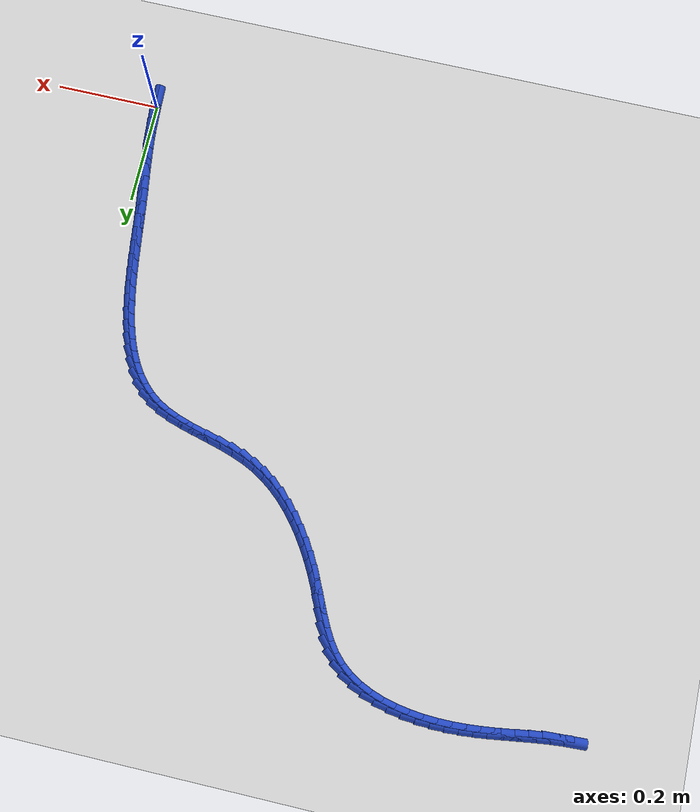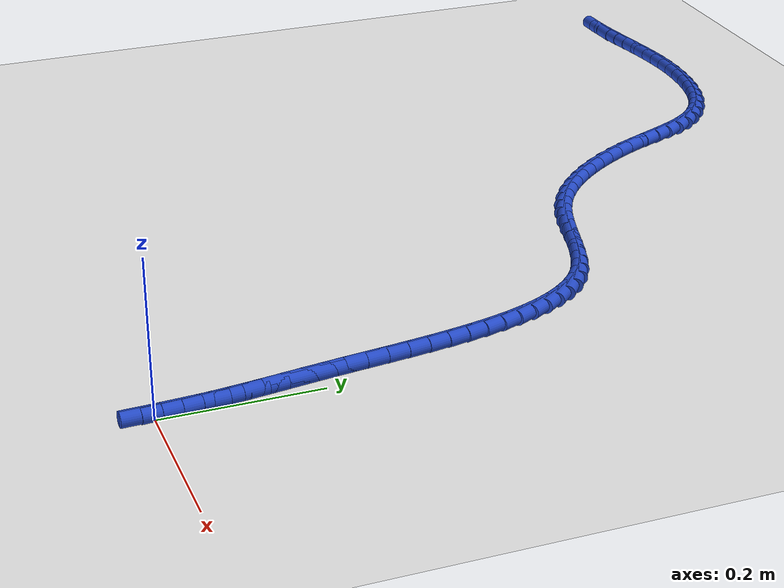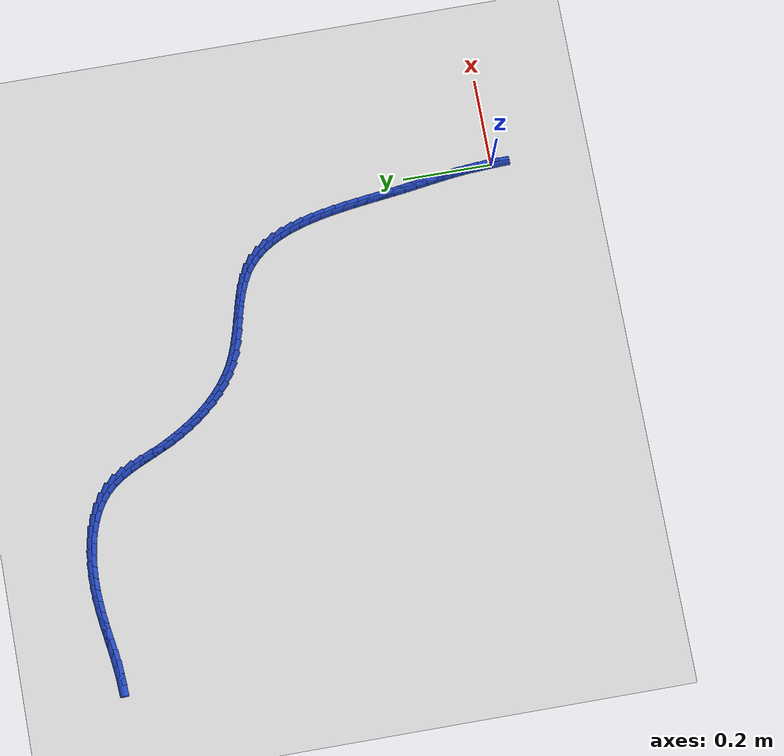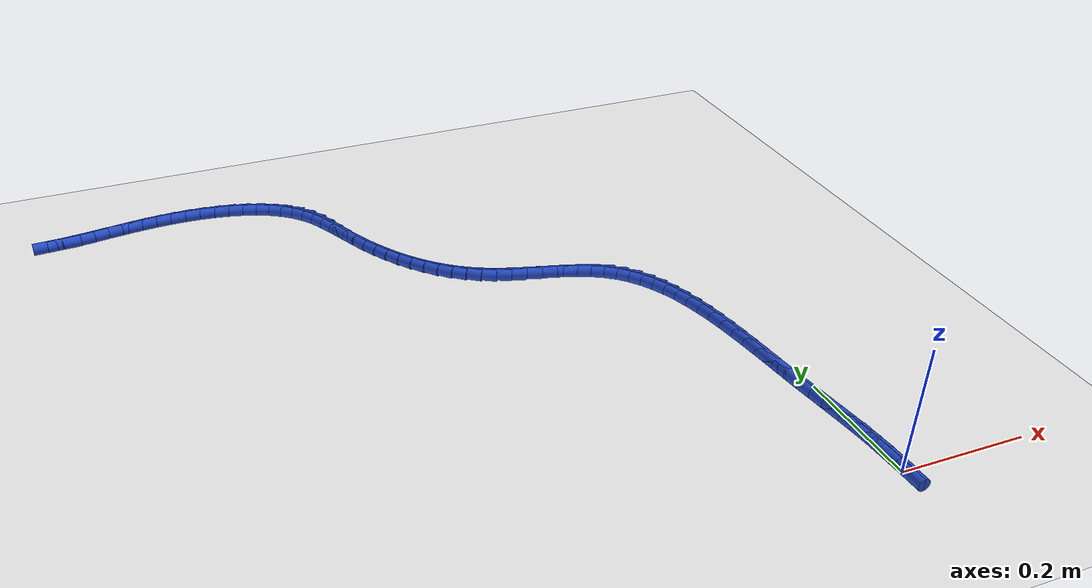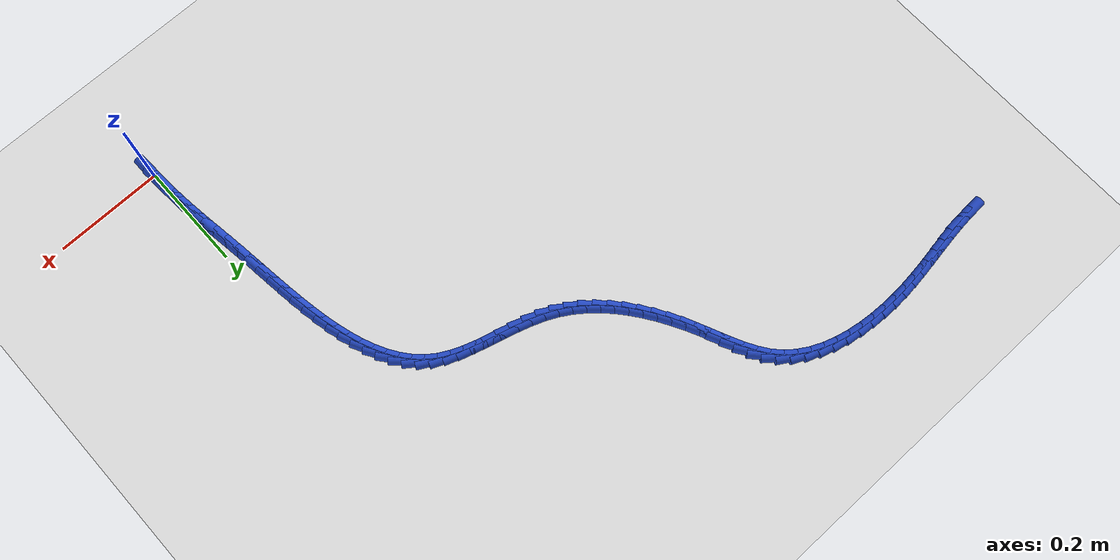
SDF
<sdf version="1.6">
 <world name="default">
  <model name="ground_plane">
   <static>1</static>
   <link name="link">
    <collision name="collision">
     <geometry><plane><normal>0 0 1</normal><size>100 100</size></plane></geometry>
     <surface><friction><ode><mu>100</mu><mu2>50</mu2></ode></friction></surface>
    </collision>
    <visual name="visual">
     <cast_shadows>0</cast_shadows>
     <geometry><plane><normal>0 0 1</normal><size>100 100</size></plane></geometry>
     <material>
      <script><uri>file://media/materials/scripts/gazebo.material</uri><name>Gazebo/WhiteGlow</name></script>
     </material>
    </visual>
   </link>
  </model>
  <model name="line">
   <link name="link_0">
    <pose>-1.0408340855860843e-17 4.163336342344337e-17 0.01 0 1.57 -1.5335265531887328</pose>
    <collision name="collision">
     <geometry><cylinder><radius>0.01</radius><length>0.08</length></cylinder></geometry>
    </collision>
    <visual name="visual">
     <material>
      <script><name>Gazebo/Blue</name><uri>file://media/materials/scripts/gazebo.material</uri></script>
     </material>
     <geometry><cylinder><radius>0.01</radius><length>0.08</length></cylinder></geometry>
    </visual>
   </link>
   <link name="link_1">
    <pose>-0.0008815606381045438 0.023642548421452525 0.01 0 1.57 -1.5033334476186593</pose>
    <collision name="collision">
     <geometry><cylinder><radius>0.01</radius><length>0.08</length></cylinder></geometry>
    </collision>
    <visual name="visual">
     <material>
      <script><name>Gazebo/Blue</name><uri>file://media/materials/scripts/gazebo.material</uri></script>
     </material>
     <geometry><cylinder><radius>0.01</radius><length>0.08</length></cylinder></geometry>
    </visual>
   </link>
   <link name="link_2">
    <pose>-0.002472213597452904 0.047184963130246164 0.01 0 1.57 -1.4779685904669417</pose>
    <collision name="collision">
     <geometry><cylinder><radius>0.01</radius><length>0.08</length></cylinder></geometry>
    </collision>
    <visual name="visual">
     <material>
      <script><name>Gazebo/Blue</name><uri>file://media/materials/scripts/gazebo.material</uri></script>
     </material>
     <geometry><cylinder><radius>0.01</radius><length>0.08</length></cylinder></geometry>
    </visual>
   </link>
   <link name="link_3">
    <pose>-0.004663008302395894 0.07071778305130683 0.01 0 1.57 -1.4577037268923556</pose>
    <collision name="collision">
     <geometry><cylinder><radius>0.01</radius><length>0.08</length></cylinder></geometry>
    </collision>
    <visual name="visual">
     <material>
      <script><name>Gazebo/Blue</name><uri>file://media/materials/scripts/gazebo.material</uri></script>
     </material>
     <geometry><cylinder><radius>0.01</radius><length>0.08</length></cylinder></geometry>
    </visual>
   </link>
   <link name="link_4">
    <pose>-0.007344994177284325 0.0943315471095603 0.01 0 1.57 -1.4426731631718936</pose>
    <collision name="collision">
     <geometry><cylinder><radius>0.01</radius><length>0.08</length></cylinder></geometry>
    </collision>
    <visual name="visual">
     <material>
      <script><name>Gazebo/Blue</name><uri>file://media/materials/scripts/gazebo.material</uri></script>
     </material>
     <geometry><cylinder><radius>0.01</radius><length>0.08</length></cylinder></geometry>
    </visual>
   </link>
   <link name="link_5">
    <pose>-0.010409220646469007 0.11811679422993246 0.01 0 1.57 -1.4328874847076394</pose>
    <collision name="collision">
     <geometry><cylinder><radius>0.01</radius><length>0.08</length></cylinder></geometry>
    </collision>
    <visual name="visual">
     <material>
      <script><name>Gazebo/Blue</name><uri>file://media/materials/scripts/gazebo.material</uri></script>
     </material>
     <geometry><cylinder><radius>0.01</radius><length>0.08</length></cylinder></geometry>
    </visual>
   </link>
   <link name="link_6">
    <pose>-0.013746737134300753 0.14216406333734918 0.01 0 1.57 -1.4282500407042749</pose>
    <collision name="collision">
     <geometry><cylinder><radius>0.01</radius><length>0.08</length></cylinder></geometry>
    </collision>
    <visual name="visual">
     <material>
      <script><name>Gazebo/Blue</name><uri>file://media/materials/scripts/gazebo.material</uri></script>
     </material>
     <geometry><cylinder><radius>0.01</radius><length>0.08</length></cylinder></geometry>
    </visual>
   </link>
   <link name="link_7">
    <pose>-0.017248593065130366 0.16656389335673624 0.01 0 1.57 -1.4285736525562691</pose>
    <collision name="collision">
     <geometry><cylinder><radius>0.01</radius><length>0.08</length></cylinder></geometry>
    </collision>
    <visual name="visual">
     <material>
      <script><name>Gazebo/Blue</name><uri>file://media/materials/scripts/gazebo.material</uri></script>
     </material>
     <geometry><cylinder><radius>0.01</radius><length>0.08</length></cylinder></geometry>
    </visual>
   </link>
   <link name="link_8">
    <pose>-0.02080583786330866 0.19140682321301955 0.01 0 1.57 -1.4335960940614685</pose>
    <collision name="collision">
     <geometry><cylinder><radius>0.01</radius><length>0.08</length></cylinder></geometry>
    </collision>
    <visual name="visual">
     <material>
      <script><name>Gazebo/Blue</name><uri>file://media/materials/scripts/gazebo.material</uri></script>
     </material>
     <geometry><cylinder><radius>0.01</radius><length>0.08</length></cylinder></geometry>
    </visual>
   </link>
   <link name="link_9">
    <pose>-0.024309520953186434 0.21678339183112483 0.01 0 1.57 -1.4421229647635574</pose>
    <collision name="collision">
     <geometry><cylinder><radius>0.01</radius><length>0.08</length></cylinder></geometry>
    </collision>
    <visual name="visual">
     <material>
      <script><name>Gazebo/Blue</name><uri>file://media/materials/scripts/gazebo.material</uri></script>
     </material>
     <geometry><cylinder><radius>0.01</radius><length>0.08</length></cylinder></geometry>
    </visual>
   </link>
   <link name="link_10">
    <pose>-0.027670828312121688 0.24276185332578593 0.01 0 1.57 -1.447130718149854</pose>
    <collision name="collision">
     <geometry><cylinder><radius>0.01</radius><length>0.08</length></cylinder></geometry>
    </collision>
    <visual name="visual">
     <material>
      <script><name>Gazebo/Blue</name><uri>file://media/materials/scripts/gazebo.material</uri></script>
     </material>
     <geometry><cylinder><radius>0.01</radius><length>0.08</length></cylinder></geometry>
    </visual>
   </link>
   <link name="link_11">
    <pose>-0.030961202705803523 0.26923310811526735 0.01 0 1.57 -1.4456629101350595</pose>
    <collision name="collision">
     <geometry><cylinder><radius>0.01</radius><length>0.08</length></cylinder></geometry>
    </collision>
    <visual name="visual">
     <material>
      <script><name>Gazebo/Blue</name><uri>file://media/materials/scripts/gazebo.material</uri></script>
     </material>
     <geometry><cylinder><radius>0.01</radius><length>0.08</length></cylinder></geometry>
    </visual>
   </link>
   <link name="link_12">
    <pose>-0.03432864654540235 0.2960033292482925 0.01 0 1.57 -1.4378909385127752</pose>
    <collision name="collision">
     <geometry><cylinder><radius>0.01</radius><length>0.08</length></cylinder></geometry>
    </collision>
    <visual name="visual">
     <material>
      <script><name>Gazebo/Blue</name><uri>file://media/materials/scripts/gazebo.material</uri></script>
     </material>
     <geometry><cylinder><radius>0.01</radius><length>0.08</length></cylinder></geometry>
    </visual>
   </link>
   <link name="link_13">
    <pose>-0.037921637205859636 0.3228781641385625 0.01 0 1.57 -1.4237598934275926</pose>
    <collision name="collision">
     <geometry><cylinder><radius>0.01</radius><length>0.08</length></cylinder></geometry>
    </collision>
    <visual name="visual">
     <material>
      <script><name>Gazebo/Blue</name><uri>file://media/materials/scripts/gazebo.material</uri></script>
     </material>
     <geometry><cylinder><radius>0.01</radius><length>0.08</length></cylinder></geometry>
    </visual>
   </link>
   <link name="link_14">
    <pose>-0.04188865206211683 0.3496632601997785 0.01 0 1.57 -1.4029803419390274</pose>
    <collision name="collision">
     <geometry><cylinder><radius>0.01</radius><length>0.08</length></cylinder></geometry>
    </collision>
    <visual name="visual">
     <material>
      <script><name>Gazebo/Blue</name><uri>file://media/materials/scripts/gazebo.material</uri></script>
     </material>
     <geometry><cylinder><radius>0.01</radius><length>0.08</length></cylinder></geometry>
    </visual>
   </link>
   <link name="link_15">
    <pose>-0.04637816848911541 0.3761642648456414 0.01 0 1.57 -1.3750277220714602</pose>
    <collision name="collision">
     <geometry><cylinder><radius>0.01</radius><length>0.08</length></cylinder></geometry>
    </collision>
    <visual name="visual">
     <material>
      <script><name>Gazebo/Blue</name><uri>file://media/materials/scripts/gazebo.material</uri></script>
     </material>
     <geometry><cylinder><radius>0.01</radius><length>0.08</length></cylinder></geometry>
    </visual>
   </link>
   <link name="link_16">
    <pose>-0.05153866386179685 0.40218682548985274 0.01 0 1.57 -1.3391337930501368</pose>
    <collision name="collision">
     <geometry><cylinder><radius>0.01</radius><length>0.08</length></cylinder></geometry>
    </collision>
    <visual name="visual">
     <material>
      <script><name>Gazebo/Blue</name><uri>file://media/materials/scripts/gazebo.material</uri></script>
     </material>
     <geometry><cylinder><radius>0.01</radius><length>0.08</length></cylinder></geometry>
    </visual>
   </link>
   <link name="link_17">
    <pose>-0.05751861555510259 0.42753658954611323 0.01 0 1.57 -1.2942779838909912</pose>
    <collision name="collision">
     <geometry><cylinder><radius>0.01</radius><length>0.08</length></cylinder></geometry>
    </collision>
    <visual name="visual">
     <material>
      <script><name>Gazebo/Blue</name><uri>file://media/materials/scripts/gazebo.material</uri></script>
     </material>
     <geometry><cylinder><radius>0.01</radius><length>0.08</length></cylinder></geometry>
    </visual>
   </link>
   <link name="link_18">
    <pose>-0.0644665009439741 0.45201920442812416 0.01 0 1.57 -1.239192911731538</pose>
    <collision name="collision">
     <geometry><cylinder><radius>0.01</radius><length>0.08</length></cylinder></geometry>
    </collision>
    <visual name="visual">
     <material>
      <script><name>Gazebo/Blue</name><uri>file://media/materials/scripts/gazebo.material</uri></script>
     </material>
     <geometry><cylinder><radius>0.01</radius><length>0.08</length></cylinder></geometry>
    </visual>
   </link>
   <link name="link_19">
    <pose>-0.07253079740335286 0.47544031754958666 0.01 0 1.57 -1.1724101470219883</pose>
    <collision name="collision">
     <geometry><cylinder><radius>0.01</radius><length>0.08</length></cylinder></geometry>
    </collision>
    <visual name="visual">
     <material>
      <script><name>Gazebo/Blue</name><uri>file://media/materials/scripts/gazebo.material</uri></script>
     </material>
     <geometry><cylinder><radius>0.01</radius><length>0.08</length></cylinder></geometry>
    </visual>
   </link>
   <link name="link_20">
    <pose>-0.08185998230818031 0.49760557632420155 0.01 0 1.57 -1.0923901492039259</pose>
    <collision name="collision">
     <geometry><cylinder><radius>0.01</radius><length>0.08</length></cylinder></geometry>
    </collision>
    <visual name="visual">
     <material>
      <script><name>Gazebo/Blue</name><uri>file://media/materials/scripts/gazebo.material</uri></script>
     </material>
     <geometry><cylinder><radius>0.01</radius><length>0.08</length></cylinder></geometry>
    </visual>
   </link>
   <link name="link_21">
    <pose>-0.09260253303339797 0.5183206281656704 0.01 0 1.57 -0.9977986946641823</pose>
    <collision name="collision">
     <geometry><cylinder><radius>0.01</radius><length>0.08</length></cylinder></geometry>
    </collision>
    <visual name="visual">
     <material>
      <script><name>Gazebo/Blue</name><uri>file://media/materials/scripts/gazebo.material</uri></script>
     </material>
     <geometry><cylinder><radius>0.01</radius><length>0.08</length></cylinder></geometry>
    </visual>
   </link>
   <link name="link_22">
    <pose>-0.10490692695394727 0.5373911204876941 0.01 0 1.57 -0.8879886369406136</pose>
    <collision name="collision">
     <geometry><cylinder><radius>0.01</radius><length>0.08</length></cylinder></geometry>
    </collision>
    <visual name="visual">
     <material>
      <script><name>Gazebo/Blue</name><uri>file://media/materials/scripts/gazebo.material</uri></script>
     </material>
     <geometry><cylinder><radius>0.01</radius><length>0.08</length></cylinder></geometry>
    </visual>
   </link>
   <link name="link_23">
    <pose>-0.11892164144476966 0.5546227007039738 0.01 0 1.57 -0.7636713867671715</pose>
    <collision name="collision">
     <geometry><cylinder><radius>0.01</radius><length>0.08</length></cylinder></geometry>
    </collision>
    <visual name="visual">
     <material>
      <script><name>Gazebo/Blue</name><uri>file://media/materials/scripts/gazebo.material</uri></script>
     </material>
     <geometry><cylinder><radius>0.01</radius><length>0.08</length></cylinder></geometry>
    </visual>
   </link>
   <link name="link_24">
    <pose>-0.1347951538808066 0.5698210162282105 0.01 0 1.57 -0.6275834383459182</pose>
    <collision name="collision">
     <geometry><cylinder><radius>0.01</radius><length>0.08</length></cylinder></geometry>
    </collision>
    <visual name="visual">
     <material>
      <script><name>Gazebo/Blue</name><uri>file://media/materials/scripts/gazebo.material</uri></script>
     </material>
     <geometry><cylinder><radius>0.01</radius><length>0.08</length></cylinder></geometry>
    </visual>
   </link>
   <link name="link_25">
    <pose>-0.15267575117991916 0.5827919592301838 0.01 0 1.57 -0.4939381866768642</pose>
    <collision name="collision">
     <geometry><cylinder><radius>0.01</radius><length>0.08</length></cylinder></geometry>
    </collision>
    <visual name="visual">
     <material>
      <script><name>Gazebo/Blue</name><uri>file://media/materials/scripts/gazebo.material</uri></script>
     </material>
     <geometry><cylinder><radius>0.01</radius><length>0.08</length></cylinder></geometry>
    </visual>
   </link>
   <link name="link_26">
    <pose>-0.1725806281138693 0.5935098881794412 0.01 0 1.57 -0.3911125346922422</pose>
    <collision name="collision">
     <geometry><cylinder><radius>0.01</radius><length>0.08</length></cylinder></geometry>
    </collision>
    <visual name="visual">
     <material>
      <script><name>Gazebo/Blue</name><uri>file://media/materials/scripts/gazebo.material</uri></script>
     </material>
     <geometry><cylinder><radius>0.01</radius><length>0.08</length></cylinder></geometry>
    </visual>
   </link>
   <link name="link_27">
    <pose>-0.1941673604443634 0.6024113073395603 0.01 0 1.57 -0.3208952534931505</pose>
    <collision name="collision">
     <geometry><cylinder><radius>0.01</radius><length>0.08</length></cylinder></geometry>
    </collision>
    <visual name="visual">
     <material>
      <script><name>Gazebo/Blue</name><uri>file://media/materials/scripts/gazebo.material</uri></script>
     </material>
     <geometry><cylinder><radius>0.01</radius><length>0.08</length></cylinder></geometry>
    </visual>
   </link>
   <link name="link_28">
    <pose>-0.21703240450827754 0.61001126544571 0.01 0 1.57 -0.2794964845156658</pose>
    <collision name="collision">
     <geometry><cylinder><radius>0.01</radius><length>0.08</length></cylinder></geometry>
    </collision>
    <visual name="visual">
     <material>
      <script><name>Gazebo/Blue</name><uri>file://media/materials/scripts/gazebo.material</uri></script>
     </material>
     <geometry><cylinder><radius>0.01</radius><length>0.08</length></cylinder></geometry>
    </visual>
   </link>
   <link name="link_29">
    <pose>-0.24077221664248757 0.6168248112330594 0.01 0 1.57 -0.26391209824238027</pose>
    <collision name="collision">
     <geometry><cylinder><radius>0.01</radius><length>0.08</length></cylinder></geometry>
    </collision>
    <visual name="visual">
     <material>
      <script><name>Gazebo/Blue</name><uri>file://media/materials/scripts/gazebo.material</uri></script>
     </material>
     <geometry><cylinder><radius>0.01</radius><length>0.08</length></cylinder></geometry>
    </visual>
   </link>
   <link name="link_30">
    <pose>-0.2649832531838695 0.6233669934367777 0.01 0 1.57 -0.27254368932291256</pose>
    <collision name="collision">
     <geometry><cylinder><radius>0.01</radius><length>0.08</length></cylinder></geometry>
    </collision>
    <visual name="visual">
     <material>
      <script><name>Gazebo/Blue</name><uri>file://media/materials/scripts/gazebo.material</uri></script>
     </material>
     <geometry><cylinder><radius>0.01</radius><length>0.08</length></cylinder></geometry>
    </visual>
   </link>
   <link name="link_31">
    <pose>-0.28926197046929925 0.630152860792034 0.01 0 1.57 -0.30525969146622467</pose>
    <collision name="collision">
     <geometry><cylinder><radius>0.01</radius><length>0.08</length></cylinder></geometry>
    </collision>
    <visual name="visual">
     <material>
      <script><name>Gazebo/Blue</name><uri>file://media/materials/scripts/gazebo.material</uri></script>
     </material>
     <geometry><cylinder><radius>0.01</radius><length>0.08</length></cylinder></geometry>
    </visual>
   </link>
   <link name="link_32">
    <pose>-0.3132048248356526 0.6376974620339968 0.01 0 1.57 -0.3631874440926667</pose>
    <collision name="collision">
     <geometry><cylinder><radius>0.01</radius><length>0.08</length></cylinder></geometry>
    </collision>
    <visual name="visual">
     <material>
      <script><name>Gazebo/Blue</name><uri>file://media/materials/scripts/gazebo.material</uri></script>
     </material>
     <geometry><cylinder><radius>0.01</radius><length>0.08</length></cylinder></geometry>
    </visual>
   </link>
   <link name="link_33">
    <pose>-0.3364082726198057 0.6465158458978358 0.01 0 1.57 -0.4474529683519637</pose>
    <collision name="collision">
     <geometry><cylinder><radius>0.01</radius><length>0.08</length></cylinder></geometry>
    </collision>
    <visual name="visual">
     <material>
      <script><name>Gazebo/Blue</name><uri>file://media/materials/scripts/gazebo.material</uri></script>
     </material>
     <geometry><cylinder><radius>0.01</radius><length>0.08</length></cylinder></geometry>
    </visual>
   </link>
   <link name="link_34">
    <pose>-0.35847890117476733 0.6571079280459454 0.01 0 1.57 -0.5431304937333896</pose>
    <collision name="collision">
     <geometry><cylinder><radius>0.01</radius><length>0.08</length></cylinder></geometry>
    </collision>
    <visual name="visual">
     <material>
      <script><name>Gazebo/Blue</name><uri>file://media/materials/scripts/gazebo.material</uri></script>
     </material>
     <geometry><cylinder><radius>0.01</radius><length>0.08</length></cylinder></geometry>
    </visual>
   </link>
   <link name="link_35">
    <pose>-0.37924413398741486 0.6696437530555999 0.01 0 1.57 -0.6336956714926293</pose>
    <collision name="collision">
     <geometry><cylinder><radius>0.01</radius><length>0.08</length></cylinder></geometry>
    </collision>
    <visual name="visual">
     <material>
      <script><name>Gazebo/Blue</name><uri>file://media/materials/scripts/gazebo.material</uri></script>
     </material>
     <geometry><cylinder><radius>0.01</radius><length>0.08</length></cylinder></geometry>
    </visual>
   </link>
   <link name="link_36">
    <pose>-0.3987456701961418 0.6839732940536191 0.01 0 1.57 -0.7175199030941809</pose>
    <collision name="collision">
     <geometry><cylinder><radius>0.01</radius><length>0.08</length></cylinder></geometry>
    </collision>
    <visual name="visual">
     <material>
      <script><name>Gazebo/Blue</name><uri>file://media/materials/scripts/gazebo.material</uri></script>
     </material>
     <geometry><cylinder><radius>0.01</radius><length>0.08</length></cylinder></geometry>
    </visual>
   </link>
   <link name="link_37">
    <pose>-0.41703402748490576 0.699933351579786 0.01 0 1.57 -0.7941288165803341</pose>
    <collision name="collision">
     <geometry><cylinder><radius>0.01</radius><length>0.08</length></cylinder></geometry>
    </collision>
    <visual name="visual">
     <material>
      <script><name>Gazebo/Blue</name><uri>file://media/materials/scripts/gazebo.material</uri></script>
     </material>
     <geometry><cylinder><radius>0.01</radius><length>0.08</length></cylinder></geometry>
    </visual>
   </link>
   <link name="link_38">
    <pose>-0.4341597235376636 0.7173607261738832 0.01 0 1.57 -0.8634644352262602</pose>
    <collision name="collision">
     <geometry><cylinder><radius>0.01</radius><length>0.08</length></cylinder></geometry>
    </collision>
    <visual name="visual">
     <material>
      <script><name>Gazebo/Blue</name><uri>file://media/materials/scripts/gazebo.material</uri></script>
     </material>
     <geometry><cylinder><radius>0.01</radius><length>0.08</length></cylinder></geometry>
    </visual>
   </link>
   <link name="link_39">
    <pose>-0.4501732760383726 0.7360922183756939 0.01 0 1.57 -0.9257633937367337</pose>
    <collision name="collision">
     <geometry><cylinder><radius>0.01</radius><length>0.08</length></cylinder></geometry>
    </collision>
    <visual name="visual">
     <material>
      <script><name>Gazebo/Blue</name><uri>file://media/materials/scripts/gazebo.material</uri></script>
     </material>
     <geometry><cylinder><radius>0.01</radius><length>0.08</length></cylinder></geometry>
    </visual>
   </link>
   <link name="link_40">
    <pose>-0.46512520267099 0.7559646287250008 0.01 0 1.57 -0.9814424630135068</pose>
    <collision name="collision">
     <geometry><cylinder><radius>0.01</radius><length>0.08</length></cylinder></geometry>
    </collision>
    <visual name="visual">
     <material>
      <script><name>Gazebo/Blue</name><uri>file://media/materials/scripts/gazebo.material</uri></script>
     </material>
     <geometry><cylinder><radius>0.01</radius><length>0.08</length></cylinder></geometry>
    </visual>
   </link>
   <link name="link_41">
    <pose>-0.479066021119473 0.7768147577615864 0.01 0 1.57 -1.0310070218489655</pose>
    <collision name="collision">
     <geometry><cylinder><radius>0.01</radius><length>0.08</length></cylinder></geometry>
    </collision>
    <visual name="visual">
     <material>
      <script><name>Gazebo/Blue</name><uri>file://media/materials/scripts/gazebo.material</uri></script>
     </material>
     <geometry><cylinder><radius>0.01</radius><length>0.08</length></cylinder></geometry>
    </visual>
   </link>
   <link name="link_42">
    <pose>-0.4920462490677786 0.7984794060252336 0.01 0 1.57 -1.074985651485482</pose>
    <collision name="collision">
     <geometry><cylinder><radius>0.01</radius><length>0.08</length></cylinder></geometry>
    </collision>
    <visual name="visual">
     <material>
      <script><name>Gazebo/Blue</name><uri>file://media/materials/scripts/gazebo.material</uri></script>
     </material>
     <geometry><cylinder><radius>0.01</radius><length>0.08</length></cylinder></geometry>
    </visual>
   </link>
   <link name="link_43">
    <pose>-0.5041164041998645 0.8207953740557256 0.01 0 1.57 -1.1138864565512858</pose>
    <collision name="collision">
     <geometry><cylinder><radius>0.01</radius><length>0.08</length></cylinder></geometry>
    </collision>
    <visual name="visual">
     <material>
      <script><name>Gazebo/Blue</name><uri>file://media/materials/scripts/gazebo.material</uri></script>
     </material>
     <geometry><cylinder><radius>0.01</radius><length>0.08</length></cylinder></geometry>
    </visual>
   </link>
   <link name="link_44">
    <pose>-0.515327024153798 0.8435994497952456 0.01 0 1.57 -1.1430391814062826</pose>
    <collision name="collision">
     <geometry><cylinder><radius>0.01</radius><length>0.08</length></cylinder></geometry>
    </collision>
    <visual name="visual">
     <material>
      <script><name>Gazebo/Blue</name><uri>file://media/materials/scripts/gazebo.material</uri></script>
     </material>
     <geometry><cylinder><radius>0.01</radius><length>0.08</length></cylinder></geometry>
    </visual>
   </link>
   <link name="link_45">
    <pose>-0.5258397549877789 0.8666582752708383 0.01 0 1.57 -1.1454804708642452</pose>
    <collision name="collision">
     <geometry><cylinder><radius>0.01</radius><length>0.08</length></cylinder></geometry>
    </collision>
    <visual name="visual">
     <material>
      <script><name>Gazebo/Blue</name><uri>file://media/materials/scripts/gazebo.material</uri></script>
     </material>
     <geometry><cylinder><radius>0.01</radius><length>0.08</length></cylinder></geometry>
    </visual>
   </link>
   <link name="link_46">
    <pose>-0.5361879579658857 0.8895038180964252 0.01 0 1.57 -1.1167049565069889</pose>
    <collision name="collision">
     <geometry><cylinder><radius>0.01</radius><length>0.08</length></cylinder></geometry>
    </collision>
    <visual name="visual">
     <material>
      <script><name>Gazebo/Blue</name><uri>file://media/materials/scripts/gazebo.material</uri></script>
     </material>
     <geometry><cylinder><radius>0.01</radius><length>0.08</length></cylinder></geometry>
    </visual>
   </link>
   <link name="link_47">
    <pose>-0.5469826380340865 0.9116190272146653 0.01 0 1.57 -1.0542662585774825</pose>
    <collision name="collision">
     <geometry><cylinder><radius>0.01</radius><length>0.08</length></cylinder></geometry>
    </collision>
    <visual name="visual">
     <material>
      <script><name>Gazebo/Blue</name><uri>file://media/materials/scripts/gazebo.material</uri></script>
     </material>
     <geometry><cylinder><radius>0.01</radius><length>0.08</length></cylinder></geometry>
    </visual>
   </link>
   <link name="link_48">
    <pose>-0.5588348001383497 0.9324868515682173 0.01 0 1.57 -0.9548800586331992</pose>
    <collision name="collision">
     <geometry><cylinder><radius>0.01</radius><length>0.08</length></cylinder></geometry>
    </collision>
    <visual name="visual">
     <material>
      <script><name>Gazebo/Blue</name><uri>file://media/materials/scripts/gazebo.material</uri></script>
     </material>
     <geometry><cylinder><radius>0.01</radius><length>0.08</length></cylinder></geometry>
    </visual>
   </link>
   <link name="link_49">
    <pose>-0.5723554492246438 0.9515902400997405 0.01 0 1.57 -0.8179550583791481</pose>
    <collision name="collision">
     <geometry><cylinder><radius>0.01</radius><length>0.08</length></cylinder></geometry>
    </collision>
    <visual name="visual">
     <material>
      <script><name>Gazebo/Blue</name><uri>file://media/materials/scripts/gazebo.material</uri></script>
     </material>
     <geometry><cylinder><radius>0.01</radius><length>0.08</length></cylinder></geometry>
    </visual>
   </link>
   <link name="link_50">
    <pose>-0.5881319767385045 0.9684289952767251 0.01 0 1.57 -0.6705664116566687</pose>
    <collision name="collision">
     <geometry><cylinder><radius>0.01</radius><length>0.08</length></cylinder></geometry>
    </collision>
    <visual name="visual">
     <material>
      <script><name>Gazebo/Blue</name><uri>file://media/materials/scripts/gazebo.material</uri></script>
     </material>
     <geometry><cylinder><radius>0.01</radius><length>0.08</length></cylinder></geometry>
    </visual>
   </link>
   <link name="link_51">
    <pose>-0.6062906542935942 0.9828320319131779 0.01 0 1.57 -0.5385052175458477</pose>
    <collision name="collision">
     <geometry><cylinder><radius>0.01</radius><length>0.08</length></cylinder></geometry>
    </collision>
    <visual name="visual">
     <material>
      <script><name>Gazebo/Blue</name><uri>file://media/materials/scripts/gazebo.material</uri></script>
     </material>
     <geometry><cylinder><radius>0.01</radius><length>0.08</length></cylinder></geometry>
    </visual>
   </link>
   <link name="link_52">
    <pose>-0.6265380501189136 0.994927817252256 0.01 0 1.57 -0.42344300470566193</pose>
    <collision name="collision">
     <geometry><cylinder><radius>0.01</radius><length>0.08</length></cylinder></geometry>
    </collision>
    <visual name="visual">
     <material>
      <script><name>Gazebo/Blue</name><uri>file://media/materials/scripts/gazebo.material</uri></script>
     </material>
     <geometry><cylinder><radius>0.01</radius><length>0.08</length></cylinder></geometry>
    </visual>
   </link>
   <link name="link_53">
    <pose>-0.6485654252368007 1.004855743659729 0.01 0 1.57 -0.3242987128208899</pose>
    <collision name="collision">
     <geometry><cylinder><radius>0.01</radius><length>0.08</length></cylinder></geometry>
    </collision>
    <visual name="visual">
     <material>
      <script><name>Gazebo/Blue</name><uri>file://media/materials/scripts/gazebo.material</uri></script>
     </material>
     <geometry><cylinder><radius>0.01</radius><length>0.08</length></cylinder></geometry>
    </visual>
   </link>
   <link name="link_54">
    <pose>-0.6720640406695941 1.0127552035013687 0.01 0 1.57 -0.23905856530614733</pose>
    <collision name="collision">
     <geometry><cylinder><radius>0.01</radius><length>0.08</length></cylinder></geometry>
    </collision>
    <visual name="visual">
     <material>
      <script><name>Gazebo/Blue</name><uri>file://media/materials/scripts/gazebo.material</uri></script>
     </material>
     <geometry><cylinder><radius>0.01</radius><length>0.08</length></cylinder></geometry>
    </visual>
   </link>
   <link name="link_55">
    <pose>-0.6967251574396328 1.018765589142946 0.01 0 1.57 -0.1654622695289538</pose>
    <collision name="collision">
     <geometry><cylinder><radius>0.01</radius><length>0.08</length></cylinder></geometry>
    </collision>
    <visual name="visual">
     <material>
      <script><name>Gazebo/Blue</name><uri>file://media/materials/scripts/gazebo.material</uri></script>
     </material>
     <geometry><cylinder><radius>0.01</radius><length>0.08</length></cylinder></geometry>
    </visual>
   </link>
   <link name="link_56">
    <pose>-0.7222400365692545 1.0230262929502314 0.01 0 1.57 -0.1013561791781203</pose>
    <collision name="collision">
     <geometry><cylinder><radius>0.01</radius><length>0.08</length></cylinder></geometry>
    </collision>
    <visual name="visual">
     <material>
      <script><name>Gazebo/Blue</name><uri>file://media/materials/scripts/gazebo.material</uri></script>
     </material>
     <geometry><cylinder><radius>0.01</radius><length>0.08</length></cylinder></geometry>
    </visual>
   </link>
   <link name="link_57">
    <pose>-0.7482999390807981 1.0256767072889958 0.01 0 1.57 -0.044825021189955454</pose>
    <collision name="collision">
     <geometry><cylinder><radius>0.01</radius><length>0.08</length></cylinder></geometry>
    </collision>
    <visual name="visual">
     <material>
      <script><name>Gazebo/Blue</name><uri>file://media/materials/scripts/gazebo.material</uri></script>
     </material>
     <geometry><cylinder><radius>0.01</radius><length>0.08</length></cylinder></geometry>
    </visual>
   </link>
   <link name="link_58">
    <pose>-0.7745961259966018 1.0268562245250101 0.01 0 1.57 0.005795734840312658</pose>
    <collision name="collision">
     <geometry><cylinder><radius>0.01</radius><length>0.08</length></cylinder></geometry>
    </collision>
    <visual name="visual">
     <material>
      <script><name>Gazebo/Blue</name><uri>file://media/materials/scripts/gazebo.material</uri></script>
     </material>
     <geometry><cylinder><radius>0.01</radius><length>0.08</length></cylinder></geometry>
    </visual>
   </link>
   <link name="link_59">
    <pose>-0.800819858339004 1.0267042370240456 0.01 0 1.57 0.05180352897620178</pose>
    <collision name="collision">
     <geometry><cylinder><radius>0.01</radius><length>0.08</length></cylinder></geometry>
    </collision>
    <visual name="visual">
     <material>
      <script><name>Gazebo/Blue</name><uri>file://media/materials/scripts/gazebo.material</uri></script>
     </material>
     <geometry><cylinder><radius>0.01</radius><length>0.08</length></cylinder></geometry>
    </visual>
   </link>
   <link name="link_60">
    <pose>-0.8266719919961103 1.0253638059917194 0.01 0 1.57 0.09097652016335105</pose>
    <collision name="collision">
     <geometry><cylinder><radius>0.01</radius><length>0.08</length></cylinder></geometry>
    </collision>
    <visual name="visual">
     <material>
      <script><name>Gazebo/Blue</name><uri>file://media/materials/scripts/gazebo.material</uri></script>
     </material>
     <geometry><cylinder><radius>0.01</radius><length>0.08</length></cylinder></geometry>
    </visual>
   </link>
   <link name="link_61">
    <pose>-0.8520403675194744 1.023049490953751 0.01 0 1.57 0.12004342587354605</pose>
    <collision name="collision">
     <geometry><cylinder><radius>0.01</radius><length>0.08</length></cylinder></geometry>
    </collision>
    <visual name="visual">
     <material>
      <script><name>Gazebo/Blue</name><uri>file://media/materials/scripts/gazebo.material</uri></script>
     </material>
     <geometry><cylinder><radius>0.01</radius><length>0.08</length></cylinder></geometry>
    </visual>
   </link>
   <link name="link_62">
    <pose>-0.8769828090884937 1.020040848979572 0.01 0 1.57 0.1382888419318313</pose>
    <collision name="collision">
     <geometry><cylinder><radius>0.01</radius><length>0.08</length></cylinder></geometry>
    </collision>
    <visual name="visual">
     <material>
      <script><name>Gazebo/Blue</name><uri>file://media/materials/scripts/gazebo.material</uri></script>
     </material>
     <geometry><cylinder><radius>0.01</radius><length>0.08</length></cylinder></geometry>
    </visual>
   </link>
   <link name="link_63">
    <pose>-0.9015633258527398 1.016619802118548 0.01 0 1.57 0.14522849882930947</pose>
    <collision name="collision">
     <geometry><cylinder><radius>0.01</radius><length>0.08</length></cylinder></geometry>
    </collision>
    <visual name="visual">
     <material>
      <script><name>Gazebo/Blue</name><uri>file://media/materials/scripts/gazebo.material</uri></script>
     </material>
     <geometry><cylinder><radius>0.01</radius><length>0.08</length></cylinder></geometry>
    </visual>
   </link>
   <link name="link_64">
    <pose>-0.9258459269617842 1.013068272420046 0.01 0 1.57 0.14045266396409087</pose>
    <collision name="collision">
     <geometry><cylinder><radius>0.01</radius><length>0.08</length></cylinder></geometry>
    </collision>
    <visual name="visual">
     <material>
      <script><name>Gazebo/Blue</name><uri>file://media/materials/scripts/gazebo.material</uri></script>
     </material>
     <geometry><cylinder><radius>0.01</radius><length>0.08</length></cylinder></geometry>
    </visual>
   </link>
   <link name="link_65">
    <pose>-0.9498946215651989 1.0096681819334323 0.01 0 1.57 0.12360774929353104</pose>
    <collision name="collision">
     <geometry><cylinder><radius>0.01</radius><length>0.08</length></cylinder></geometry>
    </collision>
    <visual name="visual">
     <material>
      <script><name>Gazebo/Blue</name><uri>file://media/materials/scripts/gazebo.material</uri></script>
     </material>
     <geometry><cylinder><radius>0.01</radius><length>0.08</length></cylinder></geometry>
    </visual>
   </link>
   <link name="link_66">
    <pose>-0.9737734188125546 1.0067014527080729 0.01 0 1.57 0.09442473405715081</pose>
    <collision name="collision">
     <geometry><cylinder><radius>0.01</radius><length>0.08</length></cylinder></geometry>
    </collision>
    <visual name="visual">
     <material>
      <script><name>Gazebo/Blue</name><uri>file://media/materials/scripts/gazebo.material</uri></script>
     </material>
     <geometry><cylinder><radius>0.01</radius><length>0.08</length></cylinder></geometry>
    </visual>
   </link>
   <link name="link_67">
    <pose>-0.9975463278534236 1.0044500067933348 0.01 0 1.57 0.05280321403246875</pose>
    <collision name="collision">
     <geometry><cylinder><radius>0.01</radius><length>0.08</length></cylinder></geometry>
    </collision>
    <visual name="visual">
     <material>
      <script><name>Gazebo/Blue</name><uri>file://media/materials/scripts/gazebo.material</uri></script>
     </material>
     <geometry><cylinder><radius>0.01</radius><length>0.08</length></cylinder></geometry>
    </visual>
   </link>
   <link name="link_280">
    <pose>-2.0816681711721685e-17 -1.1796119636642288e-16 0.01 0 1.57 -1.5324464647079956</pose>
    <collision name="collision">
     <geometry><cylinder><radius>0.01</radius><length>0.08</length></cylinder></geometry>
    </collision>
    <visual name="visual">
     <material>
      <script><name>Gazebo/Blue</name><uri>file://media/materials/scripts/gazebo.material</uri></script>
     </material>
     <geometry><cylinder><radius>0.01</radius><length>0.08</length></cylinder></geometry>
    </visual>
   </link>
   <link name="link_281">
    <pose>-0.0009063399956257667 0.023621874527821 0.01 0 1.57 -1.495542040057002</pose>
    <collision name="collision">
     <geometry><cylinder><radius>0.01</radius><length>0.08</length></cylinder></geometry>
    </collision>
    <visual name="visual">
     <material>
      <script><name>Gazebo/Blue</name><uri>file://media/materials/scripts/gazebo.material</uri></script>
     </material>
     <geometry><cylinder><radius>0.01</radius><length>0.08</length></cylinder></geometry>
    </visual>
   </link>
   <link name="link_282">
    <pose>-0.002670448457622652 0.04701957198119576 0.01 0 1.57 -1.514062872626725</pose>
    <collision name="collision">
     <geometry><cylinder><radius>0.01</radius><length>0.08</length></cylinder></geometry>
    </collision>
    <visual name="visual">
     <material>
      <script><name>Gazebo/Blue</name><uri>file://media/materials/scripts/gazebo.material</uri></script>
     </material>
     <geometry><cylinder><radius>0.01</radius><length>0.08</length></cylinder></geometry>
    </visual>
   </link>
  </model>
 </world>
</sdf>
